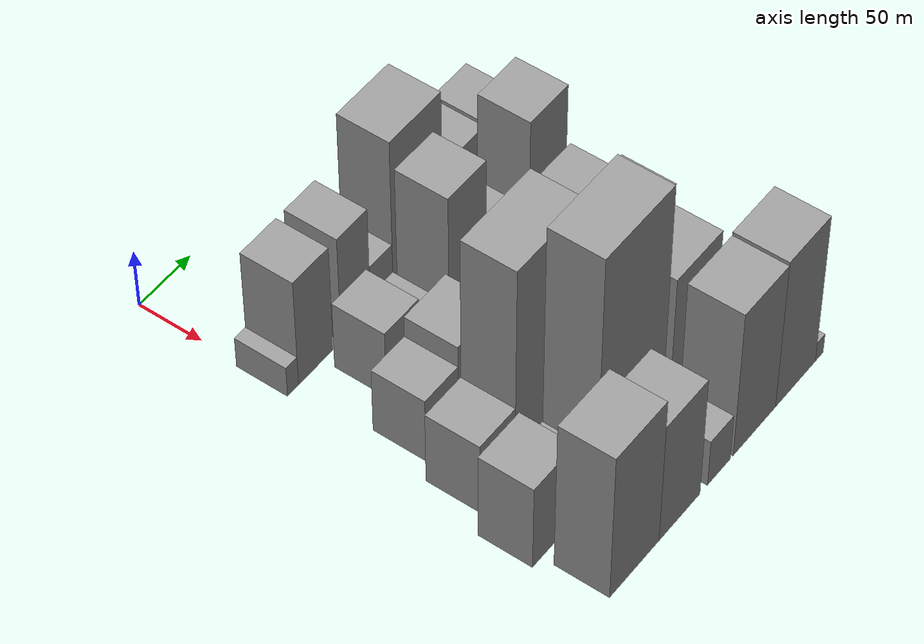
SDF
<sdf version="1.6">
 <world name="default">
  <model name="building_25">
   <static>1</static>
   <pose>100.0000 2.5151 0 0.000000 0.000000 0.000000</pose>
   <link name="link">
    <pose>0 0 13.50 0 0 0</pose>
    <collision name="collision"><geometry><box><size>40.0000 10.9063 27.0000</size></box></geometry></collision>
    <visual name="visual">
     <cast_shadows>0</cast_shadows>
     <geometry><box><size>40.0000 10.9063 27.0000</size></box></geometry>
     <material>
      <script>
       <uri>model://grey_wall/materials/scripts</uri>
       <uri>model://grey_wall/materials/textures</uri>
       <name>vrc/grey_wall</name>
      </script>
     </material>
    </visual>
   </link>
  </model>
  <model name="building_26">
   <static>1</static>
   <pose>100.0000 25.2675 0 0.000000 0.000000 0.000000</pose>
   <link name="link">
    <pose>0 0 48.00 0 0 0</pose>
    <collision name="collision"><geometry><box><size>40.0000 34.5985 96.0000</size></box></geometry></collision>
    <visual name="visual">
     <cast_shadows>0</cast_shadows>
     <geometry><box><size>40.0000 34.5985 96.0000</size></box></geometry>
     <material>
      <script>
       <uri>model://grey_wall/materials/scripts</uri>
       <uri>model://grey_wall/materials/textures</uri>
       <name>vrc/grey_wall</name>
      </script>
     </material>
    </visual>
   </link>
  </model>
  <model name="building_27">
   <static>1</static>
   <pose>100.0000 65.6006 0 0.000000 0.000000 0.000000</pose>
   <link name="link">
    <pose>0 0 48.00 0 0 0</pose>
    <collision name="collision"><geometry><box><size>40.0000 30.0678 96.0000</size></box></geometry></collision>
    <visual name="visual">
     <cast_shadows>0</cast_shadows>
     <geometry><box><size>40.0000 30.0678 96.0000</size></box></geometry>
     <material>
      <script>
       <uri>model://grey_wall/materials/scripts</uri>
       <uri>model://grey_wall/materials/textures</uri>
       <name>vrc/grey_wall</name>
      </script>
     </material>
    </visual>
   </link>
  </model>
  <model name="building_28">
   <static>1</static>
   <pose>100.0000 92.2088 0 0.000000 0.000000 0.000000</pose>
   <link name="link">
    <pose>0 0 21.00 0 0 0</pose>
    <collision name="collision"><geometry><box><size>40.0000 23.1486 42.0000</size></box></geometry></collision>
    <visual name="visual">
     <cast_shadows>0</cast_shadows>
     <geometry><box><size>40.0000 23.1486 42.0000</size></box></geometry>
     <material>
      <script>
       <uri>model://grey_wall/materials/scripts</uri>
       <uri>model://grey_wall/materials/textures</uri>
       <name>vrc/grey_wall</name>
      </script>
     </material>
    </visual>
   </link>
  </model>
  <model name="building_29">
   <static>1</static>
   <pose>100.0000 129.7440 0 0.000000 0.000000 0.000000</pose>
   <link name="link">
    <pose>0 0 67.50 0 0 0</pose>
    <collision name="collision"><geometry><box><size>40.0000 51.9217 135.0000</size></box></geometry></collision>
    <visual name="visual">
     <cast_shadows>0</cast_shadows>
     <geometry><box><size>40.0000 51.9217 135.0000</size></box></geometry>
     <material>
      <script>
       <uri>model://grey_wall/materials/scripts</uri>
       <uri>model://grey_wall/materials/textures</uri>
       <name>vrc/grey_wall</name>
      </script>
     </material>
    </visual>
   </link>
  </model>
  <model name="building_30">
   <static>1</static>
   <pose>100.0000 182.0196 0 0.000000 0.000000 0.000000</pose>
   <link name="link">
    <pose>0 0 33.00 0 0 0</pose>
    <collision name="collision"><geometry><box><size>40.0000 36.6295 66.0000</size></box></geometry></collision>
    <visual name="visual">
     <cast_shadows>0</cast_shadows>
     <geometry><box><size>40.0000 36.6295 66.0000</size></box></geometry>
     <material>
      <script>
       <uri>model://grey_wall/materials/scripts</uri>
       <uri>model://grey_wall/materials/textures</uri>
       <name>vrc/grey_wall</name>
      </script>
     </material>
    </visual>
   </link>
  </model>
  <model name="building_31">
   <static>1</static>
   <pose>100.0000 217.7204 0 0.000000 0.000000 0.000000</pose>
   <link name="link">
    <pose>0 0 34.50 0 0 0</pose>
    <collision name="collision"><geometry><box><size>40.0000 34.7721 69.0000</size></box></geometry></collision>
    <visual name="visual">
     <cast_shadows>0</cast_shadows>
     <geometry><box><size>40.0000 34.7721 69.0000</size></box></geometry>
     <material>
      <script>
       <uri>model://grey_wall/materials/scripts</uri>
       <uri>model://grey_wall/materials/textures</uri>
       <name>vrc/grey_wall</name>
      </script>
     </material>
    </visual>
   </link>
  </model>
  <model name="building_81">
   <static>1</static>
   <pose>149.0000 49.5067 0 0.000000 0.000000 0.000000</pose>
   <link name="link">
    <pose>0 0 30.00 0 0 0</pose>
    <collision name="collision"><geometry><box><size>40.0000 34.1278 60.0000</size></box></geometry></collision>
    <visual name="visual">
     <cast_shadows>0</cast_shadows>
     <geometry><box><size>40.0000 34.1278 60.0000</size></box></geometry>
     <material>
      <script>
       <uri>model://grey_wall/materials/scripts</uri>
       <uri>model://grey_wall/materials/textures</uri>
       <name>vrc/grey_wall</name>
      </script>
     </material>
    </visual>
   </link>
  </model>
  <model name="building_82">
   <static>1</static>
   <pose>149.0000 69.8891 0 0.000000 0.000000 0.000000</pose>
   <link name="link">
    <pose>0 0 7.50 0 0 0</pose>
    <collision name="collision"><geometry><box><size>40.0000 6.6370 15.0000</size></box></geometry></collision>
    <visual name="visual">
     <cast_shadows>0</cast_shadows>
     <geometry><box><size>40.0000 6.6370 15.0000</size></box></geometry>
     <material>
      <script>
       <uri>model://grey_wall/materials/scripts</uri>
       <uri>model://grey_wall/materials/textures</uri>
       <name>vrc/grey_wall</name>
      </script>
     </material>
    </visual>
   </link>
  </model>
  <model name="building_83">
   <static>1</static>
   <pose>149.0000 82.9755 0 0.000000 0.000000 0.000000</pose>
   <link name="link">
    <pose>0 0 16.50 0 0 0</pose>
    <collision name="collision"><geometry><box><size>40.0000 19.5358 33.0000</size></box></geometry></collision>
    <visual name="visual">
     <cast_shadows>0</cast_shadows>
     <geometry><box><size>40.0000 19.5358 33.0000</size></box></geometry>
     <material>
      <script>
       <uri>model://grey_wall/materials/scripts</uri>
       <uri>model://grey_wall/materials/textures</uri>
       <name>vrc/grey_wall</name>
      </script>
     </material>
    </visual>
   </link>
  </model>
  <model name="building_84">
   <static>1</static>
   <pose>149.0000 116.1158 0 0.000000 0.000000 0.000000</pose>
   <link name="link">
    <pose>0 0 61.50 0 0 0</pose>
    <collision name="collision"><geometry><box><size>40.0000 38.7449 123.0000</size></box></geometry></collision>
    <visual name="visual">
     <cast_shadows>0</cast_shadows>
     <geometry><box><size>40.0000 38.7449 123.0000</size></box></geometry>
     <material>
      <script>
       <uri>model://grey_wall/materials/scripts</uri>
       <uri>model://grey_wall/materials/textures</uri>
       <name>vrc/grey_wall</name>
      </script>
     </material>
    </visual>
   </link>
  </model>
  <model name="building_85">
   <static>1</static>
   <pose>149.0000 150.5830 0 0.000000 0.000000 0.000000</pose>
   <link name="link">
    <pose>0 0 30.00 0 0 0</pose>
    <collision name="collision"><geometry><box><size>40.0000 30.1894 60.0000</size></box></geometry></collision>
    <visual name="visual">
     <cast_shadows>0</cast_shadows>
     <geometry><box><size>40.0000 30.1894 60.0000</size></box></geometry>
     <material>
      <script>
       <uri>model://grey_wall/materials/scripts</uri>
       <uri>model://grey_wall/materials/textures</uri>
       <name>vrc/grey_wall</name>
      </script>
     </material>
    </visual>
   </link>
  </model>
  <model name="building_86">
   <static>1</static>
   <pose>149.0000 169.0528 0 0.000000 0.000000 0.000000</pose>
   <link name="link">
    <pose>0 0 7.50 0 0 0</pose>
    <collision name="collision"><geometry><box><size>40.0000 6.7502 15.0000</size></box></geometry></collision>
    <visual name="visual">
     <cast_shadows>0</cast_shadows>
     <geometry><box><size>40.0000 6.7502 15.0000</size></box></geometry>
     <material>
      <script>
       <uri>model://grey_wall/materials/scripts</uri>
       <uri>model://grey_wall/materials/textures</uri>
       <name>vrc/grey_wall</name>
      </script>
     </material>
    </visual>
   </link>
  </model>
  <model name="building_87">
   <static>1</static>
   <pose>149.0000 176.6702 0 0.000000 0.000000 0.000000</pose>
   <link name="link">
    <pose>0 0 9.00 0 0 0</pose>
    <collision name="collision"><geometry><box><size>40.0000 8.4845 18.0000</size></box></geometry></collision>
    <visual name="visual">
     <cast_shadows>0</cast_shadows>
     <geometry><box><size>40.0000 8.4845 18.0000</size></box></geometry>
     <material>
      <script>
       <uri>model://grey_wall/materials/scripts</uri>
       <uri>model://grey_wall/materials/textures</uri>
       <name>vrc/grey_wall</name>
      </script>
     </material>
    </visual>
   </link>
  </model>
  <model name="building_88">
   <static>1</static>
   <pose>149.0000 200.7447 0 0.000000 0.000000 0.000000</pose>
   <link name="link">
    <pose>0 0 58.50 0 0 0</pose>
    <collision name="collision"><geometry><box><size>40.0000 39.6646 117.0000</size></box></geometry></collision>
    <visual name="visual">
     <cast_shadows>0</cast_shadows>
     <geometry><box><size>40.0000 39.6646 117.0000</size></box></geometry>
     <material>
      <script>
       <uri>model://grey_wall/materials/scripts</uri>
       <uri>model://grey_wall/materials/textures</uri>
       <name>vrc/grey_wall</name>
      </script>
     </material>
    </visual>
   </link>
  </model>
  <model name="building_134">
   <static>1</static>
   <pose>198.0000 23.7415 0 0.000000 0.000000 0.000000</pose>
   <link name="link">
    <pose>0 0 28.50 0 0 0</pose>
    <collision name="collision"><geometry><box><size>40.0000 32.8474 57.0000</size></box></geometry></collision>
    <visual name="visual">
     <cast_shadows>0</cast_shadows>
     <geometry><box><size>40.0000 32.8474 57.0000</size></box></geometry>
     <material>
      <script>
       <uri>model://grey_wall/materials/scripts</uri>
       <uri>model://grey_wall/materials/textures</uri>
       <name>vrc/grey_wall</name>
      </script>
     </material>
    </visual>
   </link>
  </model>
  <model name="building_135">
   <static>1</static>
   <pose>198.0000 61.0651 0 0.000000 0.000000 0.000000</pose>
   <link name="link">
    <pose>0 0 37.50 0 0 0</pose>
    <collision name="collision"><geometry><box><size>40.0000 41.7999 75.0000</size></box></geometry></collision>
    <visual name="visual">
     <cast_shadows>0</cast_shadows>
     <geometry><box><size>40.0000 41.7999 75.0000</size></box></geometry>
     <material>
      <script>
       <uri>model://grey_wall/materials/scripts</uri>
       <uri>model://grey_wall/materials/textures</uri>
       <name>vrc/grey_wall</name>
      </script>
     </material>
    </visual>
   </link>
  </model>
  <model name="building_136">
   <static>1</static>
   <pose>198.0000 91.7502 0 0.000000 0.000000 0.000000</pose>
   <link name="link">
    <pose>0 0 19.50 0 0 0</pose>
    <collision name="collision"><geometry><box><size>40.0000 19.5705 39.0000</size></box></geometry></collision>
    <visual name="visual">
     <cast_shadows>0</cast_shadows>
     <geometry><box><size>40.0000 19.5705 39.0000</size></box></geometry>
     <material>
      <script>
       <uri>model://grey_wall/materials/scripts</uri>
       <uri>model://grey_wall/materials/textures</uri>
       <name>vrc/grey_wall</name>
      </script>
     </material>
    </visual>
   </link>
  </model>
  <model name="building_137">
   <static>1</static>
   <pose>198.0000 126.2471 0 0.000000 0.000000 0.000000</pose>
   <link name="link">
    <pose>0 0 42.00 0 0 0</pose>
    <collision name="collision"><geometry><box><size>40.0000 49.4233 84.0000</size></box></geometry></collision>
    <visual name="visual">
     <cast_shadows>0</cast_shadows>
     <geometry><box><size>40.0000 49.4233 84.0000</size></box></geometry>
     <material>
      <script>
       <uri>model://grey_wall/materials/scripts</uri>
       <uri>model://grey_wall/materials/textures</uri>
       <name>vrc/grey_wall</name>
      </script>
     </material>
    </visual>
   </link>
  </model>
  <model name="building_138">
   <static>1</static>
   <pose>198.0000 159.4452 0 0.000000 0.000000 0.000000</pose>
   <link name="link">
    <pose>0 0 16.50 0 0 0</pose>
    <collision name="collision"><geometry><box><size>40.0000 16.9728 33.0000</size></box></geometry></collision>
    <visual name="visual">
     <cast_shadows>0</cast_shadows>
     <geometry><box><size>40.0000 16.9728 33.0000</size></box></geometry>
     <material>
      <script>
       <uri>model://grey_wall/materials/scripts</uri>
       <uri>model://grey_wall/materials/textures</uri>
       <name>vrc/grey_wall</name>
      </script>
     </material>
    </visual>
   </link>
  </model>
  <model name="building_139">
   <static>1</static>
   <pose>198.0000 189.6523 0 0.000000 0.000000 0.000000</pose>
   <link name="link">
    <pose>0 0 39.00 0 0 0</pose>
    <collision name="collision"><geometry><box><size>40.0000 43.4414 78.0000</size></box></geometry></collision>
    <visual name="visual">
     <cast_shadows>0</cast_shadows>
     <geometry><box><size>40.0000 43.4414 78.0000</size></box></geometry>
     <material>
      <script>
       <uri>model://grey_wall/materials/scripts</uri>
       <uri>model://grey_wall/materials/textures</uri>
       <name>vrc/grey_wall</name>
      </script>
     </material>
    </visual>
   </link>
  </model>
  <model name="building_182">
   <static>1</static>
   <pose>247.0000 13.1707 0 0.000000 0.000000 0.000000</pose>
   <link name="link">
    <pose>0 0 31.50 0 0 0</pose>
    <collision name="collision"><geometry><box><size>40.0000 35.5819 63.0000</size></box></geometry></collision>
    <visual name="visual">
     <cast_shadows>0</cast_shadows>
     <geometry><box><size>40.0000 35.5819 63.0000</size></box></geometry>
     <material>
      <script>
       <uri>model://grey_wall/materials/scripts</uri>
       <uri>model://grey_wall/materials/textures</uri>
       <name>vrc/grey_wall</name>
      </script>
     </material>
    </visual>
   </link>
  </model>
  <model name="building_183">
   <static>1</static>
   <pose>247.0000 65.0733 0 0.000000 0.000000 0.000000</pose>
   <link name="link">
    <pose>0 0 93.00 0 0 0</pose>
    <collision name="collision"><geometry><box><size>40.0000 68.2232 186.0000</size></box></geometry></collision>
    <visual name="visual">
     <cast_shadows>0</cast_shadows>
     <geometry><box><size>40.0000 68.2232 186.0000</size></box></geometry>
     <material>
      <script>
       <uri>model://grey_wall/materials/scripts</uri>
       <uri>model://grey_wall/materials/textures</uri>
       <name>vrc/grey_wall</name>
      </script>
     </material>
    </visual>
   </link>
  </model>
  <model name="building_184">
   <static>1</static>
   <pose>247.0000 110.4803 0 0.000000 0.000000 0.000000</pose>
   <link name="link">
    <pose>0 0 19.50 0 0 0</pose>
    <collision name="collision"><geometry><box><size>40.0000 22.5909 39.0000</size></box></geometry></collision>
    <visual name="visual">
     <cast_shadows>0</cast_shadows>
     <geometry><box><size>40.0000 22.5909 39.0000</size></box></geometry>
     <material>
      <script>
       <uri>model://grey_wall/materials/scripts</uri>
       <uri>model://grey_wall/materials/textures</uri>
       <name>vrc/grey_wall</name>
      </script>
     </material>
    </visual>
   </link>
  </model>
  <model name="building_185">
   <static>1</static>
   <pose>247.0000 136.3132 0 0.000000 0.000000 0.000000</pose>
   <link name="link">
    <pose>0 0 22.50 0 0 0</pose>
    <collision name="collision"><geometry><box><size>40.0000 23.0749 45.0000</size></box></geometry></collision>
    <visual name="visual">
     <cast_shadows>0</cast_shadows>
     <geometry><box><size>40.0000 23.0749 45.0000</size></box></geometry>
     <material>
      <script>
       <uri>model://grey_wall/materials/scripts</uri>
       <uri>model://grey_wall/materials/textures</uri>
       <name>vrc/grey_wall</name>
      </script>
     </material>
    </visual>
   </link>
  </model>
  <model name="building_186">
   <static>1</static>
   <pose>247.0000 176.2372 0 0.000000 0.000000 0.000000</pose>
   <link name="link">
    <pose>0 0 57.00 0 0 0</pose>
    <collision name="collision"><geometry><box><size>40.0000 36.7731 114.0000</size></box></geometry></collision>
    <visual name="visual">
     <cast_shadows>0</cast_shadows>
     <geometry><box><size>40.0000 36.7731 114.0000</size></box></geometry>
     <material>
      <script>
       <uri>model://grey_wall/materials/scripts</uri>
       <uri>model://grey_wall/materials/textures</uri>
       <name>vrc/grey_wall</name>
      </script>
     </material>
    </visual>
   </link>
  </model>
  <model name="building_228">
   <static>1</static>
   <pose>296.0000 1.7748 0 0.000000 0.000000 0.000000</pose>
   <link name="link">
    <pose>0 0 37.50 0 0 0</pose>
    <collision name="collision"><geometry><box><size>40.0000 41.0809 75.0000</size></box></geometry></collision>
    <visual name="visual">
     <cast_shadows>0</cast_shadows>
     <geometry><box><size>40.0000 41.0809 75.0000</size></box></geometry>
     <material>
      <script>
       <uri>model://grey_wall/materials/scripts</uri>
       <uri>model://grey_wall/materials/textures</uri>
       <name>vrc/grey_wall</name>
      </script>
     </material>
    </visual>
   </link>
  </model>
  <model name="building_229">
   <static>1</static>
   <pose>296.0000 34.2545 0 0.000000 0.000000 0.000000</pose>
   <link name="link">
    <pose>0 0 21.00 0 0 0</pose>
    <collision name="collision"><geometry><box><size>40.0000 23.8785 42.0000</size></box></geometry></collision>
    <visual name="visual">
     <cast_shadows>0</cast_shadows>
     <geometry><box><size>40.0000 23.8785 42.0000</size></box></geometry>
     <material>
      <script>
       <uri>model://grey_wall/materials/scripts</uri>
       <uri>model://grey_wall/materials/textures</uri>
       <name>vrc/grey_wall</name>
      </script>
     </material>
    </visual>
   </link>
  </model>
  <model name="building_230">
   <static>1</static>
   <pose>296.0000 80.5717 0 0.000000 0.000000 0.000000</pose>
   <link name="link">
    <pose>0 0 108.00 0 0 0</pose>
    <collision name="collision"><geometry><box><size>40.0000 68.7559 216.0000</size></box></geometry></collision>
    <visual name="visual">
     <cast_shadows>0</cast_shadows>
     <geometry><box><size>40.0000 68.7559 216.0000</size></box></geometry>
     <material>
      <script>
       <uri>model://grey_wall/materials/scripts</uri>
       <uri>model://grey_wall/materials/textures</uri>
       <name>vrc/grey_wall</name>
      </script>
     </material>
    </visual>
   </link>
  </model>
  <model name="building_231">
   <static>1</static>
   <pose>296.0000 146.9675 0 0.000000 0.000000 0.000000</pose>
   <link name="link">
    <pose>0 0 63.00 0 0 0</pose>
    <collision name="collision"><geometry><box><size>40.0000 48.0357 126.0000</size></box></geometry></collision>
    <visual name="visual">
     <cast_shadows>0</cast_shadows>
     <geometry><box><size>40.0000 48.0357 126.0000</size></box></geometry>
     <material>
      <script>
       <uri>model://grey_wall/materials/scripts</uri>
       <uri>model://grey_wall/materials/textures</uri>
       <name>vrc/grey_wall</name>
      </script>
     </material>
    </visual>
   </link>
  </model>
  <model name="building_232">
   <static>1</static>
   <pose>296.0000 179.7727 0 0.000000 0.000000 0.000000</pose>
   <link name="link">
    <pose>0 0 9.00 0 0 0</pose>
    <collision name="collision"><geometry><box><size>40.0000 7.5746 18.0000</size></box></geometry></collision>
    <visual name="visual">
     <cast_shadows>0</cast_shadows>
     <geometry><box><size>40.0000 7.5746 18.0000</size></box></geometry>
     <material>
      <script>
       <uri>model://grey_wall/materials/scripts</uri>
       <uri>model://grey_wall/materials/textures</uri>
       <name>vrc/grey_wall</name>
      </script>
     </material>
    </visual>
   </link>
  </model>
  <model name="building_233">
   <static>1</static>
   <pose>296.0000 192.6267 0 0.000000 0.000000 0.000000</pose>
   <link name="link">
    <pose>0 0 16.50 0 0 0</pose>
    <collision name="collision"><geometry><box><size>40.0000 18.1333 33.0000</size></box></geometry></collision>
    <visual name="visual">
     <cast_shadows>0</cast_shadows>
     <geometry><box><size>40.0000 18.1333 33.0000</size></box></geometry>
     <material>
      <script>
       <uri>model://grey_wall/materials/scripts</uri>
       <uri>model://grey_wall/materials/textures</uri>
       <name>vrc/grey_wall</name>
      </script>
     </material>
    </visual>
   </link>
  </model>
  <model name="building_274">
   <static>1</static>
   <pose>345.0000 15.8147 0 0.000000 0.000000 0.000000</pose>
   <link name="link">
    <pose>0 0 66.00 0 0 0</pose>
    <collision name="collision"><geometry><box><size>40.0000 51.0586 132.0000</size></box></geometry></collision>
    <visual name="visual">
     <cast_shadows>0</cast_shadows>
     <geometry><box><size>40.0000 51.0586 132.0000</size></box></geometry>
     <material>
      <script>
       <uri>model://grey_wall/materials/scripts</uri>
       <uri>model://grey_wall/materials/textures</uri>
       <name>vrc/grey_wall</name>
      </script>
     </material>
    </visual>
   </link>
  </model>
  <model name="building_275">
   <static>1</static>
   <pose>345.0000 62.9054 0 0.000000 0.000000 0.000000</pose>
   <link name="link">
    <pose>0 0 54.00 0 0 0</pose>
    <collision name="collision"><geometry><box><size>40.0000 43.1229 108.0000</size></box></geometry></collision>
    <visual name="visual">
     <cast_shadows>0</cast_shadows>
     <geometry><box><size>40.0000 43.1229 108.0000</size></box></geometry>
     <material>
      <script>
       <uri>model://grey_wall/materials/scripts</uri>
       <uri>model://grey_wall/materials/textures</uri>
       <name>vrc/grey_wall</name>
      </script>
     </material>
    </visual>
   </link>
  </model>
  <model name="building_276">
   <static>1</static>
   <pose>345.0000 104.7606 0 0.000000 0.000000 0.000000</pose>
   <link name="link">
    <pose>0 0 21.00 0 0 0</pose>
    <collision name="collision"><geometry><box><size>40.0000 24.5874 42.0000</size></box></geometry></collision>
    <visual name="visual">
     <cast_shadows>0</cast_shadows>
     <geometry><box><size>40.0000 24.5874 42.0000</size></box></geometry>
     <material>
      <script>
       <uri>model://grey_wall/materials/scripts</uri>
       <uri>model://grey_wall/materials/textures</uri>
       <name>vrc/grey_wall</name>
      </script>
     </material>
    </visual>
   </link>
  </model>
  <model name="building_277">
   <static>1</static>
   <pose>345.0000 143.2719 0 0.000000 0.000000 0.000000</pose>
   <link name="link">
    <pose>0 0 66.00 0 0 0</pose>
    <collision name="collision"><geometry><box><size>40.0000 46.4353 132.0000</size></box></geometry></collision>
    <visual name="visual">
     <cast_shadows>0</cast_shadows>
     <geometry><box><size>40.0000 46.4353 132.0000</size></box></geometry>
     <material>
      <script>
       <uri>model://grey_wall/materials/scripts</uri>
       <uri>model://grey_wall/materials/textures</uri>
       <name>vrc/grey_wall</name>
      </script>
     </material>
    </visual>
   </link>
  </model>
  <model name="building_278">
   <static>1</static>
   <pose>345.0000 188.8658 0 0.000000 0.000000 0.000000</pose>
   <link name="link">
    <pose>0 0 67.50 0 0 0</pose>
    <collision name="collision"><geometry><box><size>40.0000 44.7525 135.0000</size></box></geometry></collision>
    <visual name="visual">
     <cast_shadows>0</cast_shadows>
     <geometry><box><size>40.0000 44.7525 135.0000</size></box></geometry>
     <material>
      <script>
       <uri>model://grey_wall/materials/scripts</uri>
       <uri>model://grey_wall/materials/textures</uri>
       <name>vrc/grey_wall</name>
      </script>
     </material>
    </visual>
   </link>
  </model>
  <model name="building_279">
   <static>1</static>
   <pose>345.0000 215.6732 0 0.000000 0.000000 0.000000</pose>
   <link name="link">
    <pose>0 0 9.00 0 0 0</pose>
    <collision name="collision"><geometry><box><size>40.0000 8.8622 18.0000</size></box></geometry></collision>
    <visual name="visual">
     <cast_shadows>0</cast_shadows>
     <geometry><box><size>40.0000 8.8622 18.0000</size></box></geometry>
     <material>
      <script>
       <uri>model://grey_wall/materials/scripts</uri>
       <uri>model://grey_wall/materials/textures</uri>
       <name>vrc/grey_wall</name>
      </script>
     </material>
    </visual>
   </link>
  </model>
 </world>
</sdf>
